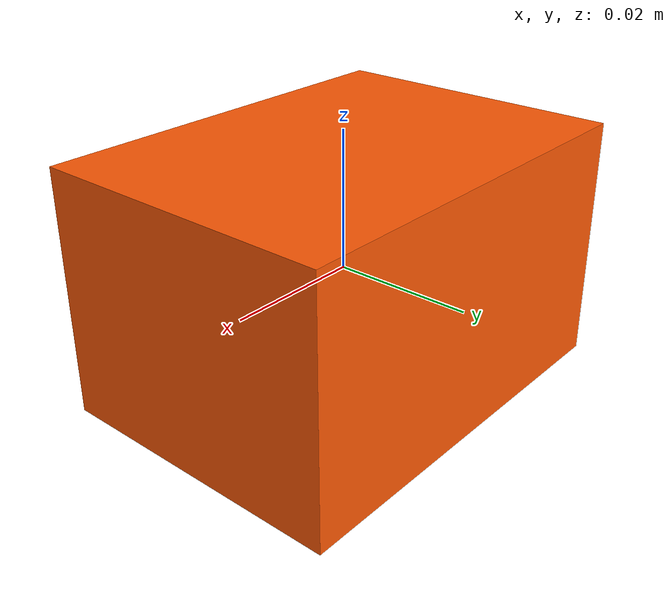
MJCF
<mujoco model="momentum_striker">
  <!-- L3-A4 object A: a stable, high-contrast sliding striker block. -->
  <asset>
    <material name="striker_orange" rgba="1.00 0.35 0.02 1.00"
              specular="0.35" shininess="0.25"/>
  </asset>
  <worldbody>
    <body>
      <body name="object">
        <geom name="visual" type="box" size="0.030 0.022 0.018"
              group="1" contype="0" conaffinity="0"
              material="striker_orange"/>
        <geom name="collision" type="box" size="0.030 0.022 0.018"
              group="0" density="520"
              friction="0.28 0.015 0.002"
              solimp="0.995 0.995 0.001" solref="0.004 1"/>
      </body>
      <site rgba="0 0 0 0" size="0.004" pos="0 0 -0.018" name="bottom_site"/>
      <site rgba="0 0 0 0" size="0.004" pos="0 0 0.018" name="top_site"/>
      <site rgba="0 0 0 0" size="0.004" pos="0.030 0 0" name="horizontal_radius_site"/>
    </body>
  </worldbody>
</mujoco>
